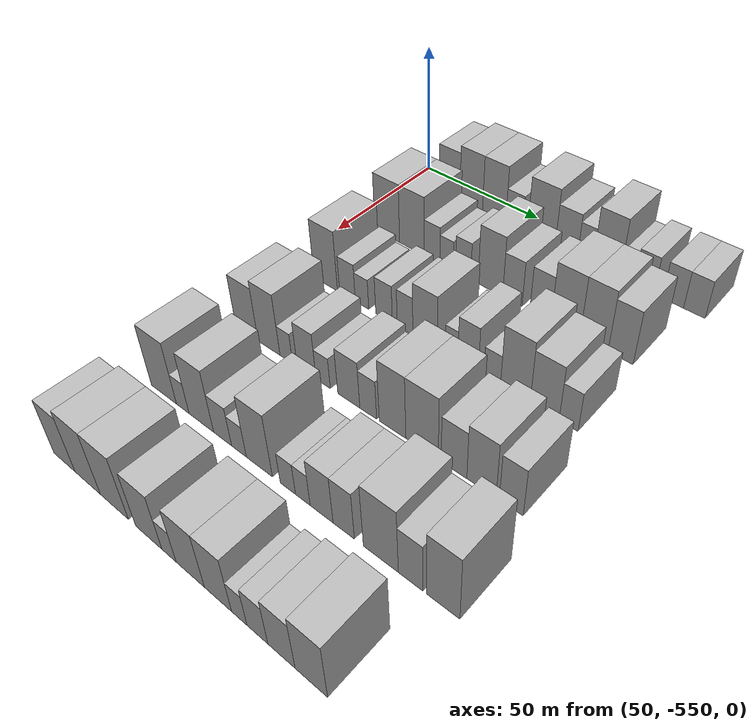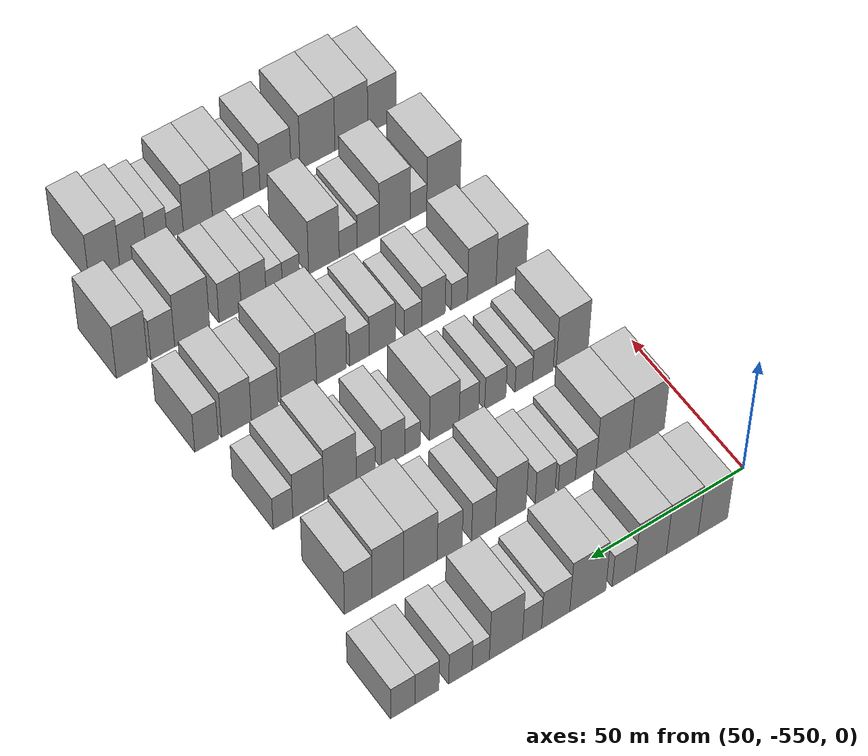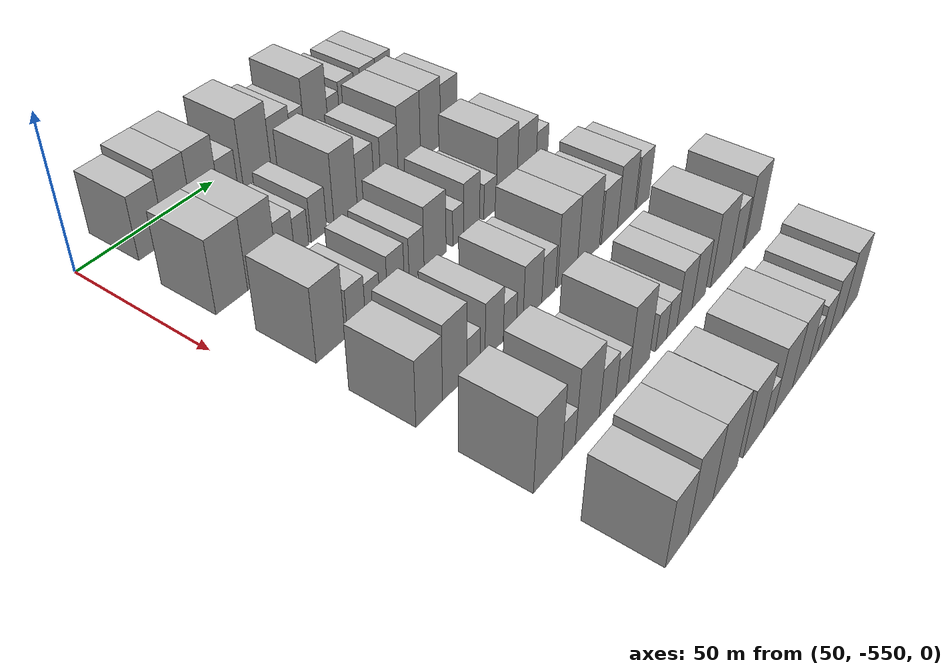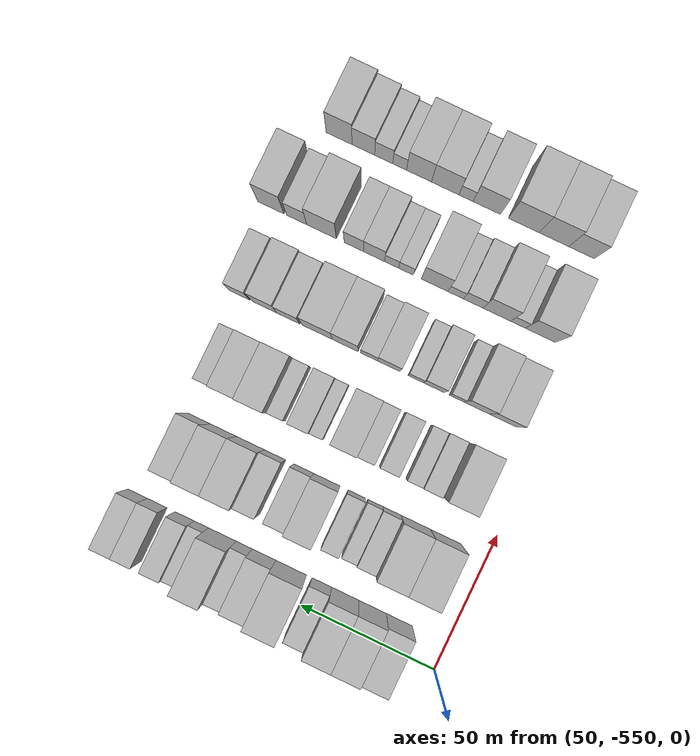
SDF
<sdf version="1.6">
 <world name="default">
  <model name="building_1">
   <static>1</static>
   <pose>50.0000 -532.1588 0 0.000000 0.000000 0.000000</pose>
   <link name="link">
    <pose>0 0 10.50 0 0 0</pose>
    <collision name="collision"><geometry><box><size>20.0000 9.6824 21.0000</size></box></geometry></collision>
    <visual name="visual">
     <cast_shadows>0</cast_shadows>
     <geometry><box><size>20.0000 9.6824 21.0000</size></box></geometry>
     <material>
      <script>
       <uri>model://HANNAS_wall/materials/scripts</uri>
       <uri>model://HANNAS_wall/materials/textures</uri>
       <name>vrc/HANNAS_wall</name>
      </script>
     </material>
    </visual>
   </link>
  </model>
  <model name="building_2">
   <static>1</static>
   <pose>50.0000 -522.1482 0 0.000000 0.000000 0.000000</pose>
   <link name="link">
    <pose>0 0 12.00 0 0 0</pose>
    <collision name="collision"><geometry><box><size>20.0000 10.3388 24.0000</size></box></geometry></collision>
    <visual name="visual">
     <cast_shadows>0</cast_shadows>
     <geometry><box><size>20.0000 10.3388 24.0000</size></box></geometry>
     <material>
      <script>
       <uri>model://HANNAS_wall/materials/scripts</uri>
       <uri>model://HANNAS_wall/materials/textures</uri>
       <name>vrc/HANNAS_wall</name>
      </script>
     </material>
    </visual>
   </link>
  </model>
  <model name="building_3">
   <static>1</static>
   <pose>50.0000 -511.8567 0 0.000000 0.000000 0.000000</pose>
   <link name="link">
    <pose>0 0 12.00 0 0 0</pose>
    <collision name="collision"><geometry><box><size>20.0000 10.2440 24.0000</size></box></geometry></collision>
    <visual name="visual">
     <cast_shadows>0</cast_shadows>
     <geometry><box><size>20.0000 10.2440 24.0000</size></box></geometry>
     <material>
      <script>
       <uri>model://HANNAS_wall/materials/scripts</uri>
       <uri>model://HANNAS_wall/materials/textures</uri>
       <name>vrc/HANNAS_wall</name>
      </script>
     </material>
    </visual>
   </link>
  </model>
  <model name="building_4">
   <static>1</static>
   <pose>50.0000 -503.0630 0 0.000000 0.000000 0.000000</pose>
   <link name="link">
    <pose>0 0 7.50 0 0 0</pose>
    <collision name="collision"><geometry><box><size>20.0000 7.3435 15.0000</size></box></geometry></collision>
    <visual name="visual">
     <cast_shadows>0</cast_shadows>
     <geometry><box><size>20.0000 7.3435 15.0000</size></box></geometry>
     <material>
      <script>
       <uri>model://HANNAS_wall/materials/scripts</uri>
       <uri>model://HANNAS_wall/materials/textures</uri>
       <name>vrc/HANNAS_wall</name>
      </script>
     </material>
    </visual>
   </link>
  </model>
  <model name="building_5">
   <static>1</static>
   <pose>50.0000 -491.6230 0 0.000000 0.000000 0.000000</pose>
   <link name="link">
    <pose>0 0 12.00 0 0 0</pose>
    <collision name="collision"><geometry><box><size>20.0000 11.5364 24.0000</size></box></geometry></collision>
    <visual name="visual">
     <cast_shadows>0</cast_shadows>
     <geometry><box><size>20.0000 11.5364 24.0000</size></box></geometry>
     <material>
      <script>
       <uri>model://HANNAS_wall/materials/scripts</uri>
       <uri>model://HANNAS_wall/materials/textures</uri>
       <name>vrc/HANNAS_wall</name>
      </script>
     </material>
    </visual>
   </link>
  </model>
  <model name="building_6">
   <static>1</static>
   <pose>50.0000 -481.3753 0 0.000000 0.000000 0.000000</pose>
   <link name="link">
    <pose>0 0 9.00 0 0 0</pose>
    <collision name="collision"><geometry><box><size>20.0000 8.9590 18.0000</size></box></geometry></collision>
    <visual name="visual">
     <cast_shadows>0</cast_shadows>
     <geometry><box><size>20.0000 8.9590 18.0000</size></box></geometry>
     <material>
      <script>
       <uri>model://HANNAS_wall/materials/scripts</uri>
       <uri>model://HANNAS_wall/materials/textures</uri>
       <name>vrc/HANNAS_wall</name>
      </script>
     </material>
    </visual>
   </link>
  </model>
  <model name="building_7">
   <static>1</static>
   <pose>50.0000 -473.8902 0 0.000000 0.000000 0.000000</pose>
   <link name="link">
    <pose>0 0 7.50 0 0 0</pose>
    <collision name="collision"><geometry><box><size>20.0000 6.0112 15.0000</size></box></geometry></collision>
    <visual name="visual">
     <cast_shadows>0</cast_shadows>
     <geometry><box><size>20.0000 6.0112 15.0000</size></box></geometry>
     <material>
      <script>
       <uri>model://HANNAS_wall/materials/scripts</uri>
       <uri>model://HANNAS_wall/materials/textures</uri>
       <name>vrc/HANNAS_wall</name>
      </script>
     </material>
    </visual>
   </link>
  </model>
  <model name="building_8">
   <static>1</static>
   <pose>50.0000 -465.6732 0 0.000000 0.000000 0.000000</pose>
   <link name="link">
    <pose>0 0 12.00 0 0 0</pose>
    <collision name="collision"><geometry><box><size>20.0000 10.4227 24.0000</size></box></geometry></collision>
    <visual name="visual">
     <cast_shadows>0</cast_shadows>
     <geometry><box><size>20.0000 10.4227 24.0000</size></box></geometry>
     <material>
      <script>
       <uri>model://HANNAS_wall/materials/scripts</uri>
       <uri>model://HANNAS_wall/materials/textures</uri>
       <name>vrc/HANNAS_wall</name>
      </script>
     </material>
    </visual>
   </link>
  </model>
  <model name="building_9">
   <static>1</static>
   <pose>50.0000 -457.7671 0 0.000000 0.000000 0.000000</pose>
   <link name="link">
    <pose>0 0 6.00 0 0 0</pose>
    <collision name="collision"><geometry><box><size>20.0000 5.3895 12.0000</size></box></geometry></collision>
    <visual name="visual">
     <cast_shadows>0</cast_shadows>
     <geometry><box><size>20.0000 5.3895 12.0000</size></box></geometry>
     <material>
      <script>
       <uri>model://HANNAS_wall/materials/scripts</uri>
       <uri>model://HANNAS_wall/materials/textures</uri>
       <name>vrc/HANNAS_wall</name>
      </script>
     </material>
    </visual>
   </link>
  </model>
  <model name="building_10">
   <static>1</static>
   <pose>50.0000 -451.4351 0 0.000000 0.000000 0.000000</pose>
   <link name="link">
    <pose>0 0 7.50 0 0 0</pose>
    <collision name="collision"><geometry><box><size>20.0000 7.2745 15.0000</size></box></geometry></collision>
    <visual name="visual">
     <cast_shadows>0</cast_shadows>
     <geometry><box><size>20.0000 7.2745 15.0000</size></box></geometry>
     <material>
      <script>
       <uri>model://HANNAS_wall/materials/scripts</uri>
       <uri>model://HANNAS_wall/materials/textures</uri>
       <name>vrc/HANNAS_wall</name>
      </script>
     </material>
    </visual>
   </link>
  </model>
  <model name="building_11">
   <static>1</static>
   <pose>50.0000 -441.0930 0 0.000000 0.000000 0.000000</pose>
   <link name="link">
    <pose>0 0 7.50 0 0 0</pose>
    <collision name="collision"><geometry><box><size>20.0000 7.4098 15.0000</size></box></geometry></collision>
    <visual name="visual">
     <cast_shadows>0</cast_shadows>
     <geometry><box><size>20.0000 7.4098 15.0000</size></box></geometry>
     <material>
      <script>
       <uri>model://HANNAS_wall/materials/scripts</uri>
       <uri>model://HANNAS_wall/materials/textures</uri>
       <name>vrc/HANNAS_wall</name>
      </script>
     </material>
    </visual>
   </link>
  </model>
  <model name="building_12">
   <static>1</static>
   <pose>50.0000 -433.6533 0 0.000000 0.000000 0.000000</pose>
   <link name="link">
    <pose>0 0 7.50 0 0 0</pose>
    <collision name="collision"><geometry><box><size>20.0000 7.4696 15.0000</size></box></geometry></collision>
    <visual name="visual">
     <cast_shadows>0</cast_shadows>
     <geometry><box><size>20.0000 7.4696 15.0000</size></box></geometry>
     <material>
      <script>
       <uri>model://HANNAS_wall/materials/scripts</uri>
       <uri>model://HANNAS_wall/materials/textures</uri>
       <name>vrc/HANNAS_wall</name>
      </script>
     </material>
    </visual>
   </link>
  </model>
  <model name="building_111">
   <static>1</static>
   <pose>82.0000 -534.2903 0 0.000000 0.000000 0.000000</pose>
   <link name="link">
    <pose>0 0 12.00 0 0 0</pose>
    <collision name="collision"><geometry><box><size>20.0000 11.4194 24.0000</size></box></geometry></collision>
    <visual name="visual">
     <cast_shadows>0</cast_shadows>
     <geometry><box><size>20.0000 11.4194 24.0000</size></box></geometry>
     <material>
      <script>
       <uri>model://HANNAS_wall/materials/scripts</uri>
       <uri>model://HANNAS_wall/materials/textures</uri>
       <name>vrc/HANNAS_wall</name>
      </script>
     </material>
    </visual>
   </link>
  </model>
  <model name="building_112">
   <static>1</static>
   <pose>82.0000 -523.0657 0 0.000000 0.000000 0.000000</pose>
   <link name="link">
    <pose>0 0 12.00 0 0 0</pose>
    <collision name="collision"><geometry><box><size>20.0000 11.0299 24.0000</size></box></geometry></collision>
    <visual name="visual">
     <cast_shadows>0</cast_shadows>
     <geometry><box><size>20.0000 11.0299 24.0000</size></box></geometry>
     <material>
      <script>
       <uri>model://HANNAS_wall/materials/scripts</uri>
       <uri>model://HANNAS_wall/materials/textures</uri>
       <name>vrc/HANNAS_wall</name>
      </script>
     </material>
    </visual>
   </link>
  </model>
  <model name="building_113">
   <static>1</static>
   <pose>82.0000 -514.1057 0 0.000000 0.000000 0.000000</pose>
   <link name="link">
    <pose>0 0 7.50 0 0 0</pose>
    <collision name="collision"><geometry><box><size>20.0000 6.8899 15.0000</size></box></geometry></collision>
    <visual name="visual">
     <cast_shadows>0</cast_shadows>
     <geometry><box><size>20.0000 6.8899 15.0000</size></box></geometry>
     <material>
      <script>
       <uri>model://HANNAS_wall/materials/scripts</uri>
       <uri>model://HANNAS_wall/materials/textures</uri>
       <name>vrc/HANNAS_wall</name>
      </script>
     </material>
    </visual>
   </link>
  </model>
  <model name="building_114">
   <static>1</static>
   <pose>82.0000 -507.8627 0 0.000000 0.000000 0.000000</pose>
   <link name="link">
    <pose>0 0 6.00 0 0 0</pose>
    <collision name="collision"><geometry><box><size>20.0000 5.5962 12.0000</size></box></geometry></collision>
    <visual name="visual">
     <cast_shadows>0</cast_shadows>
     <geometry><box><size>20.0000 5.5962 12.0000</size></box></geometry>
     <material>
      <script>
       <uri>model://HANNAS_wall/materials/scripts</uri>
       <uri>model://HANNAS_wall/materials/textures</uri>
       <name>vrc/HANNAS_wall</name>
      </script>
     </material>
    </visual>
   </link>
  </model>
  <model name="building_115">
   <static>1</static>
   <pose>82.0000 -500.8455 0 0.000000 0.000000 0.000000</pose>
   <link name="link">
    <pose>0 0 7.50 0 0 0</pose>
    <collision name="collision"><geometry><box><size>20.0000 6.4382 15.0000</size></box></geometry></collision>
    <visual name="visual">
     <cast_shadows>0</cast_shadows>
     <geometry><box><size>20.0000 6.4382 15.0000</size></box></geometry>
     <material>
      <script>
       <uri>model://HANNAS_wall/materials/scripts</uri>
       <uri>model://HANNAS_wall/materials/textures</uri>
       <name>vrc/HANNAS_wall</name>
      </script>
     </material>
    </visual>
   </link>
  </model>
  <model name="building_116">
   <static>1</static>
   <pose>82.0000 -489.6792 0 0.000000 0.000000 0.000000</pose>
   <link name="link">
    <pose>0 0 12.00 0 0 0</pose>
    <collision name="collision"><geometry><box><size>20.0000 9.8943 24.0000</size></box></geometry></collision>
    <visual name="visual">
     <cast_shadows>0</cast_shadows>
     <geometry><box><size>20.0000 9.8943 24.0000</size></box></geometry>
     <material>
      <script>
       <uri>model://HANNAS_wall/materials/scripts</uri>
       <uri>model://HANNAS_wall/materials/textures</uri>
       <name>vrc/HANNAS_wall</name>
      </script>
     </material>
    </visual>
   </link>
  </model>
  <model name="building_117">
   <static>1</static>
   <pose>82.0000 -480.9414 0 0.000000 0.000000 0.000000</pose>
   <link name="link">
    <pose>0 0 9.00 0 0 0</pose>
    <collision name="collision"><geometry><box><size>20.0000 7.5812 18.0000</size></box></geometry></collision>
    <visual name="visual">
     <cast_shadows>0</cast_shadows>
     <geometry><box><size>20.0000 7.5812 18.0000</size></box></geometry>
     <material>
      <script>
       <uri>model://HANNAS_wall/materials/scripts</uri>
       <uri>model://HANNAS_wall/materials/textures</uri>
       <name>vrc/HANNAS_wall</name>
      </script>
     </material>
    </visual>
   </link>
  </model>
  <model name="building_118">
   <static>1</static>
   <pose>82.0000 -470.1765 0 0.000000 0.000000 0.000000</pose>
   <link name="link">
    <pose>0 0 9.00 0 0 0</pose>
    <collision name="collision"><geometry><box><size>20.0000 7.9486 18.0000</size></box></geometry></collision>
    <visual name="visual">
     <cast_shadows>0</cast_shadows>
     <geometry><box><size>20.0000 7.9486 18.0000</size></box></geometry>
     <material>
      <script>
       <uri>model://HANNAS_wall/materials/scripts</uri>
       <uri>model://HANNAS_wall/materials/textures</uri>
       <name>vrc/HANNAS_wall</name>
      </script>
     </material>
    </visual>
   </link>
  </model>
  <model name="building_119">
   <static>1</static>
   <pose>82.0000 -460.9005 0 0.000000 0.000000 0.000000</pose>
   <link name="link">
    <pose>0 0 12.00 0 0 0</pose>
    <collision name="collision"><geometry><box><size>20.0000 10.6034 24.0000</size></box></geometry></collision>
    <visual name="visual">
     <cast_shadows>0</cast_shadows>
     <geometry><box><size>20.0000 10.6034 24.0000</size></box></geometry>
     <material>
      <script>
       <uri>model://HANNAS_wall/materials/scripts</uri>
       <uri>model://HANNAS_wall/materials/textures</uri>
       <name>vrc/HANNAS_wall</name>
      </script>
     </material>
    </visual>
   </link>
  </model>
  <model name="building_120">
   <static>1</static>
   <pose>82.0000 -450.6607 0 0.000000 0.000000 0.000000</pose>
   <link name="link">
    <pose>0 0 12.00 0 0 0</pose>
    <collision name="collision"><geometry><box><size>20.0000 9.8763 24.0000</size></box></geometry></collision>
    <visual name="visual">
     <cast_shadows>0</cast_shadows>
     <geometry><box><size>20.0000 9.8763 24.0000</size></box></geometry>
     <material>
      <script>
       <uri>model://HANNAS_wall/materials/scripts</uri>
       <uri>model://HANNAS_wall/materials/textures</uri>
       <name>vrc/HANNAS_wall</name>
      </script>
     </material>
    </visual>
   </link>
  </model>
  <model name="building_121">
   <static>1</static>
   <pose>82.0000 -441.4462 0 0.000000 0.000000 0.000000</pose>
   <link name="link">
    <pose>0 0 10.50 0 0 0</pose>
    <collision name="collision"><geometry><box><size>20.0000 8.5529 21.0000</size></box></geometry></collision>
    <visual name="visual">
     <cast_shadows>0</cast_shadows>
     <geometry><box><size>20.0000 8.5529 21.0000</size></box></geometry>
     <material>
      <script>
       <uri>model://HANNAS_wall/materials/scripts</uri>
       <uri>model://HANNAS_wall/materials/textures</uri>
       <name>vrc/HANNAS_wall</name>
      </script>
     </material>
    </visual>
   </link>
  </model>
  <model name="building_228">
   <static>1</static>
   <pose>114.0000 -532.6714 0 0.000000 0.000000 0.000000</pose>
   <link name="link">
    <pose>0 0 12.00 0 0 0</pose>
    <collision name="collision"><geometry><box><size>20.0000 10.6571 24.0000</size></box></geometry></collision>
    <visual name="visual">
     <cast_shadows>0</cast_shadows>
     <geometry><box><size>20.0000 10.6571 24.0000</size></box></geometry>
     <material>
      <script>
       <uri>model://HANNAS_wall/materials/scripts</uri>
       <uri>model://HANNAS_wall/materials/textures</uri>
       <name>vrc/HANNAS_wall</name>
      </script>
     </material>
    </visual>
   </link>
  </model>
  <model name="building_229">
   <static>1</static>
   <pose>114.0000 -522.8962 0 0.000000 0.000000 0.000000</pose>
   <link name="link">
    <pose>0 0 7.50 0 0 0</pose>
    <collision name="collision"><geometry><box><size>20.0000 6.8933 15.0000</size></box></geometry></collision>
    <visual name="visual">
     <cast_shadows>0</cast_shadows>
     <geometry><box><size>20.0000 6.8933 15.0000</size></box></geometry>
     <material>
      <script>
       <uri>model://HANNAS_wall/materials/scripts</uri>
       <uri>model://HANNAS_wall/materials/textures</uri>
       <name>vrc/HANNAS_wall</name>
      </script>
     </material>
    </visual>
   </link>
  </model>
  <model name="building_230">
   <static>1</static>
   <pose>114.0000 -516.5632 0 0.000000 0.000000 0.000000</pose>
   <link name="link">
    <pose>0 0 6.00 0 0 0</pose>
    <collision name="collision"><geometry><box><size>20.0000 5.7729 12.0000</size></box></geometry></collision>
    <visual name="visual">
     <cast_shadows>0</cast_shadows>
     <geometry><box><size>20.0000 5.7729 12.0000</size></box></geometry>
     <material>
      <script>
       <uri>model://HANNAS_wall/materials/scripts</uri>
       <uri>model://HANNAS_wall/materials/textures</uri>
       <name>vrc/HANNAS_wall</name>
      </script>
     </material>
    </visual>
   </link>
  </model>
  <model name="building_231">
   <static>1</static>
   <pose>114.0000 -507.1997 0 0.000000 0.000000 0.000000</pose>
   <link name="link">
    <pose>0 0 7.50 0 0 0</pose>
    <collision name="collision"><geometry><box><size>20.0000 6.9540 15.0000</size></box></geometry></collision>
    <visual name="visual">
     <cast_shadows>0</cast_shadows>
     <geometry><box><size>20.0000 6.9540 15.0000</size></box></geometry>
     <material>
      <script>
       <uri>model://HANNAS_wall/materials/scripts</uri>
       <uri>model://HANNAS_wall/materials/textures</uri>
       <name>vrc/HANNAS_wall</name>
      </script>
     </material>
    </visual>
   </link>
  </model>
  <model name="building_232">
   <static>1</static>
   <pose>114.0000 -498.5514 0 0.000000 0.000000 0.000000</pose>
   <link name="link">
    <pose>0 0 7.50 0 0 0</pose>
    <collision name="collision"><geometry><box><size>20.0000 6.3427 15.0000</size></box></geometry></collision>
    <visual name="visual">
     <cast_shadows>0</cast_shadows>
     <geometry><box><size>20.0000 6.3427 15.0000</size></box></geometry>
     <material>
      <script>
       <uri>model://HANNAS_wall/materials/scripts</uri>
       <uri>model://HANNAS_wall/materials/textures</uri>
       <name>vrc/HANNAS_wall</name>
      </script>
     </material>
    </visual>
   </link>
  </model>
  <model name="building_233">
   <static>1</static>
   <pose>114.0000 -490.5508 0 0.000000 0.000000 0.000000</pose>
   <link name="link">
    <pose>0 0 10.50 0 0 0</pose>
    <collision name="collision"><geometry><box><size>20.0000 9.6585 21.0000</size></box></geometry></collision>
    <visual name="visual">
     <cast_shadows>0</cast_shadows>
     <geometry><box><size>20.0000 9.6585 21.0000</size></box></geometry>
     <material>
      <script>
       <uri>model://HANNAS_wall/materials/scripts</uri>
       <uri>model://HANNAS_wall/materials/textures</uri>
       <name>vrc/HANNAS_wall</name>
      </script>
     </material>
    </visual>
   </link>
  </model>
  <model name="building_234">
   <static>1</static>
   <pose>114.0000 -480.2836 0 0.000000 0.000000 0.000000</pose>
   <link name="link">
    <pose>0 0 6.00 0 0 0</pose>
    <collision name="collision"><geometry><box><size>20.0000 4.8757 12.0000</size></box></geometry></collision>
    <visual name="visual">
     <cast_shadows>0</cast_shadows>
     <geometry><box><size>20.0000 4.8757 12.0000</size></box></geometry>
     <material>
      <script>
       <uri>model://HANNAS_wall/materials/scripts</uri>
       <uri>model://HANNAS_wall/materials/textures</uri>
       <name>vrc/HANNAS_wall</name>
      </script>
     </material>
    </visual>
   </link>
  </model>
  <model name="building_235">
   <static>1</static>
   <pose>114.0000 -474.0440 0 0.000000 0.000000 0.000000</pose>
   <link name="link">
    <pose>0 0 9.00 0 0 0</pose>
    <collision name="collision"><geometry><box><size>20.0000 7.6035 18.0000</size></box></geometry></collision>
    <visual name="visual">
     <cast_shadows>0</cast_shadows>
     <geometry><box><size>20.0000 7.6035 18.0000</size></box></geometry>
     <material>
      <script>
       <uri>model://HANNAS_wall/materials/scripts</uri>
       <uri>model://HANNAS_wall/materials/textures</uri>
       <name>vrc/HANNAS_wall</name>
      </script>
     </material>
    </visual>
   </link>
  </model>
  <model name="building_236">
   <static>1</static>
   <pose>114.0000 -465.2489 0 0.000000 0.000000 0.000000</pose>
   <link name="link">
    <pose>0 0 6.00 0 0 0</pose>
    <collision name="collision"><geometry><box><size>20.0000 5.9868 12.0000</size></box></geometry></collision>
    <visual name="visual">
     <cast_shadows>0</cast_shadows>
     <geometry><box><size>20.0000 5.9868 12.0000</size></box></geometry>
     <material>
      <script>
       <uri>model://HANNAS_wall/materials/scripts</uri>
       <uri>model://HANNAS_wall/materials/textures</uri>
       <name>vrc/HANNAS_wall</name>
      </script>
     </material>
    </visual>
   </link>
  </model>
  <model name="building_237">
   <static>1</static>
   <pose>114.0000 -457.0918 0 0.000000 0.000000 0.000000</pose>
   <link name="link">
    <pose>0 0 12.00 0 0 0</pose>
    <collision name="collision"><geometry><box><size>20.0000 10.3275 24.0000</size></box></geometry></collision>
    <visual name="visual">
     <cast_shadows>0</cast_shadows>
     <geometry><box><size>20.0000 10.3275 24.0000</size></box></geometry>
     <material>
      <script>
       <uri>model://HANNAS_wall/materials/scripts</uri>
       <uri>model://HANNAS_wall/materials/textures</uri>
       <name>vrc/HANNAS_wall</name>
      </script>
     </material>
    </visual>
   </link>
  </model>
  <model name="building_238">
   <static>1</static>
   <pose>114.0000 -447.0476 0 0.000000 0.000000 0.000000</pose>
   <link name="link">
    <pose>0 0 10.50 0 0 0</pose>
    <collision name="collision"><geometry><box><size>20.0000 9.7608 21.0000</size></box></geometry></collision>
    <visual name="visual">
     <cast_shadows>0</cast_shadows>
     <geometry><box><size>20.0000 9.7608 21.0000</size></box></geometry>
     <material>
      <script>
       <uri>model://HANNAS_wall/materials/scripts</uri>
       <uri>model://HANNAS_wall/materials/textures</uri>
       <name>vrc/HANNAS_wall</name>
      </script>
     </material>
    </visual>
   </link>
  </model>
  <model name="building_239">
   <static>1</static>
   <pose>114.0000 -439.0636 0 0.000000 0.000000 0.000000</pose>
   <link name="link">
    <pose>0 0 7.50 0 0 0</pose>
    <collision name="collision"><geometry><box><size>20.0000 6.2073 15.0000</size></box></geometry></collision>
    <visual name="visual">
     <cast_shadows>0</cast_shadows>
     <geometry><box><size>20.0000 6.2073 15.0000</size></box></geometry>
     <material>
      <script>
       <uri>model://HANNAS_wall/materials/scripts</uri>
       <uri>model://HANNAS_wall/materials/textures</uri>
       <name>vrc/HANNAS_wall</name>
      </script>
     </material>
    </visual>
   </link>
  </model>
  <model name="building_350">
   <static>1</static>
   <pose>146.0000 -534.9698 0 0.000000 0.000000 0.000000</pose>
   <link name="link">
    <pose>0 0 10.50 0 0 0</pose>
    <collision name="collision"><geometry><box><size>20.0000 10.0604 21.0000</size></box></geometry></collision>
    <visual name="visual">
     <cast_shadows>0</cast_shadows>
     <geometry><box><size>20.0000 10.0604 21.0000</size></box></geometry>
     <material>
      <script>
       <uri>model://HANNAS_wall/materials/scripts</uri>
       <uri>model://HANNAS_wall/materials/textures</uri>
       <name>vrc/HANNAS_wall</name>
      </script>
     </material>
    </visual>
   </link>
  </model>
  <model name="building_351">
   <static>1</static>
   <pose>146.0000 -525.0941 0 0.000000 0.000000 0.000000</pose>
   <link name="link">
    <pose>0 0 12.00 0 0 0</pose>
    <collision name="collision"><geometry><box><size>20.0000 9.6910 24.0000</size></box></geometry></collision>
    <visual name="visual">
     <cast_shadows>0</cast_shadows>
     <geometry><box><size>20.0000 9.6910 24.0000</size></box></geometry>
     <material>
      <script>
       <uri>model://HANNAS_wall/materials/scripts</uri>
       <uri>model://HANNAS_wall/materials/textures</uri>
       <name>vrc/HANNAS_wall</name>
      </script>
     </material>
    </visual>
   </link>
  </model>
  <model name="building_352">
   <static>1</static>
   <pose>146.0000 -517.5596 0 0.000000 0.000000 0.000000</pose>
   <link name="link">
    <pose>0 0 6.00 0 0 0</pose>
    <collision name="collision"><geometry><box><size>20.0000 5.3779 12.0000</size></box></geometry></collision>
    <visual name="visual">
     <cast_shadows>0</cast_shadows>
     <geometry><box><size>20.0000 5.3779 12.0000</size></box></geometry>
     <material>
      <script>
       <uri>model://HANNAS_wall/materials/scripts</uri>
       <uri>model://HANNAS_wall/materials/textures</uri>
       <name>vrc/HANNAS_wall</name>
      </script>
     </material>
    </visual>
   </link>
  </model>
  <model name="building_353">
   <static>1</static>
   <pose>146.0000 -508.9685 0 0.000000 0.000000 0.000000</pose>
   <link name="link">
    <pose>0 0 9.00 0 0 0</pose>
    <collision name="collision"><geometry><box><size>20.0000 7.8044 18.0000</size></box></geometry></collision>
    <visual name="visual">
     <cast_shadows>0</cast_shadows>
     <geometry><box><size>20.0000 7.8044 18.0000</size></box></geometry>
     <material>
      <script>
       <uri>model://HANNAS_wall/materials/scripts</uri>
       <uri>model://HANNAS_wall/materials/textures</uri>
       <name>vrc/HANNAS_wall</name>
      </script>
     </material>
    </visual>
   </link>
  </model>
  <model name="building_354">
   <static>1</static>
   <pose>146.0000 -502.2011 0 0.000000 0.000000 0.000000</pose>
   <link name="link">
    <pose>0 0 6.00 0 0 0</pose>
    <collision name="collision"><geometry><box><size>20.0000 5.7302 12.0000</size></box></geometry></collision>
    <visual name="visual">
     <cast_shadows>0</cast_shadows>
     <geometry><box><size>20.0000 5.7302 12.0000</size></box></geometry>
     <material>
      <script>
       <uri>model://HANNAS_wall/materials/scripts</uri>
       <uri>model://HANNAS_wall/materials/textures</uri>
       <name>vrc/HANNAS_wall</name>
      </script>
     </material>
    </visual>
   </link>
  </model>
  <model name="building_355">
   <static>1</static>
   <pose>146.0000 -492.0573 0 0.000000 0.000000 0.000000</pose>
   <link name="link">
    <pose>0 0 9.00 0 0 0</pose>
    <collision name="collision"><geometry><box><size>20.0000 8.5575 18.0000</size></box></geometry></collision>
    <visual name="visual">
     <cast_shadows>0</cast_shadows>
     <geometry><box><size>20.0000 8.5575 18.0000</size></box></geometry>
     <material>
      <script>
       <uri>model://HANNAS_wall/materials/scripts</uri>
       <uri>model://HANNAS_wall/materials/textures</uri>
       <name>vrc/HANNAS_wall</name>
      </script>
     </material>
    </visual>
   </link>
  </model>
  <model name="building_356">
   <static>1</static>
   <pose>146.0000 -484.5891 0 0.000000 0.000000 0.000000</pose>
   <link name="link">
    <pose>0 0 7.50 0 0 0</pose>
    <collision name="collision"><geometry><box><size>20.0000 6.3788 15.0000</size></box></geometry></collision>
    <visual name="visual">
     <cast_shadows>0</cast_shadows>
     <geometry><box><size>20.0000 6.3788 15.0000</size></box></geometry>
     <material>
      <script>
       <uri>model://HANNAS_wall/materials/scripts</uri>
       <uri>model://HANNAS_wall/materials/textures</uri>
       <name>vrc/HANNAS_wall</name>
      </script>
     </material>
    </visual>
   </link>
  </model>
  <model name="building_357">
   <static>1</static>
   <pose>146.0000 -475.5554 0 0.000000 0.000000 0.000000</pose>
   <link name="link">
    <pose>0 0 12.00 0 0 0</pose>
    <collision name="collision"><geometry><box><size>20.0000 9.6885 24.0000</size></box></geometry></collision>
    <visual name="visual">
     <cast_shadows>0</cast_shadows>
     <geometry><box><size>20.0000 9.6885 24.0000</size></box></geometry>
     <material>
      <script>
       <uri>model://HANNAS_wall/materials/scripts</uri>
       <uri>model://HANNAS_wall/materials/textures</uri>
       <name>vrc/HANNAS_wall</name>
      </script>
     </material>
    </visual>
   </link>
  </model>
  <model name="building_358">
   <static>1</static>
   <pose>146.0000 -465.0235 0 0.000000 0.000000 0.000000</pose>
   <link name="link">
    <pose>0 0 12.00 0 0 0</pose>
    <collision name="collision"><geometry><box><size>20.0000 11.3752 24.0000</size></box></geometry></collision>
    <visual name="visual">
     <cast_shadows>0</cast_shadows>
     <geometry><box><size>20.0000 11.3752 24.0000</size></box></geometry>
     <material>
      <script>
       <uri>model://HANNAS_wall/materials/scripts</uri>
       <uri>model://HANNAS_wall/materials/textures</uri>
       <name>vrc/HANNAS_wall</name>
      </script>
     </material>
    </visual>
   </link>
  </model>
  <model name="building_359">
   <static>1</static>
   <pose>146.0000 -454.0398 0 0.000000 0.000000 0.000000</pose>
   <link name="link">
    <pose>0 0 9.00 0 0 0</pose>
    <collision name="collision"><geometry><box><size>20.0000 8.5922 18.0000</size></box></geometry></collision>
    <visual name="visual">
     <cast_shadows>0</cast_shadows>
     <geometry><box><size>20.0000 8.5922 18.0000</size></box></geometry>
     <material>
      <script>
       <uri>model://HANNAS_wall/materials/scripts</uri>
       <uri>model://HANNAS_wall/materials/textures</uri>
       <name>vrc/HANNAS_wall</name>
      </script>
     </material>
    </visual>
   </link>
  </model>
  <model name="building_360">
   <static>1</static>
   <pose>146.0000 -445.0152 0 0.000000 0.000000 0.000000</pose>
   <link name="link">
    <pose>0 0 10.50 0 0 0</pose>
    <collision name="collision"><geometry><box><size>20.0000 9.4572 21.0000</size></box></geometry></collision>
    <visual name="visual">
     <cast_shadows>0</cast_shadows>
     <geometry><box><size>20.0000 9.4572 21.0000</size></box></geometry>
     <material>
      <script>
       <uri>model://HANNAS_wall/materials/scripts</uri>
       <uri>model://HANNAS_wall/materials/textures</uri>
       <name>vrc/HANNAS_wall</name>
      </script>
     </material>
    </visual>
   </link>
  </model>
  <model name="building_361">
   <static>1</static>
   <pose>146.0000 -435.5506 0 0.000000 0.000000 0.000000</pose>
   <link name="link">
    <pose>0 0 9.00 0 0 0</pose>
    <collision name="collision"><geometry><box><size>20.0000 7.4719 18.0000</size></box></geometry></collision>
    <visual name="visual">
     <cast_shadows>0</cast_shadows>
     <geometry><box><size>20.0000 7.4719 18.0000</size></box></geometry>
     <material>
      <script>
       <uri>model://HANNAS_wall/materials/scripts</uri>
       <uri>model://HANNAS_wall/materials/textures</uri>
       <name>vrc/HANNAS_wall</name>
      </script>
     </material>
    </visual>
   </link>
  </model>
  <model name="building_466">
   <static>1</static>
   <pose>178.0000 -534.3207 0 0.000000 0.000000 0.000000</pose>
   <link name="link">
    <pose>0 0 12.00 0 0 0</pose>
    <collision name="collision"><geometry><box><size>20.0000 11.3586 24.0000</size></box></geometry></collision>
    <visual name="visual">
     <cast_shadows>0</cast_shadows>
     <geometry><box><size>20.0000 11.3586 24.0000</size></box></geometry>
     <material>
      <script>
       <uri>model://HANNAS_wall/materials/scripts</uri>
       <uri>model://HANNAS_wall/materials/textures</uri>
       <name>vrc/HANNAS_wall</name>
      </script>
     </material>
    </visual>
   </link>
  </model>
  <model name="building_467">
   <static>1</static>
   <pose>178.0000 -525.8727 0 0.000000 0.000000 0.000000</pose>
   <link name="link">
    <pose>0 0 6.00 0 0 0</pose>
    <collision name="collision"><geometry><box><size>20.0000 5.5376 12.0000</size></box></geometry></collision>
    <visual name="visual">
     <cast_shadows>0</cast_shadows>
     <geometry><box><size>20.0000 5.5376 12.0000</size></box></geometry>
     <material>
      <script>
       <uri>model://HANNAS_wall/materials/scripts</uri>
       <uri>model://HANNAS_wall/materials/textures</uri>
       <name>vrc/HANNAS_wall</name>
      </script>
     </material>
    </visual>
   </link>
  </model>
  <model name="building_468">
   <static>1</static>
   <pose>178.0000 -517.8568 0 0.000000 0.000000 0.000000</pose>
   <link name="link">
    <pose>0 0 12.00 0 0 0</pose>
    <collision name="collision"><geometry><box><size>20.0000 10.4942 24.0000</size></box></geometry></collision>
    <visual name="visual">
     <cast_shadows>0</cast_shadows>
     <geometry><box><size>20.0000 10.4942 24.0000</size></box></geometry>
     <material>
      <script>
       <uri>model://HANNAS_wall/materials/scripts</uri>
       <uri>model://HANNAS_wall/materials/textures</uri>
       <name>vrc/HANNAS_wall</name>
      </script>
     </material>
    </visual>
   </link>
  </model>
  <model name="building_469">
   <static>1</static>
   <pose>178.0000 -508.9145 0 0.000000 0.000000 0.000000</pose>
   <link name="link">
    <pose>0 0 7.50 0 0 0</pose>
    <collision name="collision"><geometry><box><size>20.0000 7.3902 15.0000</size></box></geometry></collision>
    <visual name="visual">
     <cast_shadows>0</cast_shadows>
     <geometry><box><size>20.0000 7.3902 15.0000</size></box></geometry>
     <material>
      <script>
       <uri>model://HANNAS_wall/materials/scripts</uri>
       <uri>model://HANNAS_wall/materials/textures</uri>
       <name>vrc/HANNAS_wall</name>
      </script>
     </material>
    </visual>
   </link>
  </model>
  <model name="building_470">
   <static>1</static>
   <pose>178.0000 -502.2492 0 0.000000 0.000000 0.000000</pose>
   <link name="link">
    <pose>0 0 6.00 0 0 0</pose>
    <collision name="collision"><geometry><box><size>20.0000 5.9404 12.0000</size></box></geometry></collision>
    <visual name="visual">
     <cast_shadows>0</cast_shadows>
     <geometry><box><size>20.0000 5.9404 12.0000</size></box></geometry>
     <material>
      <script>
       <uri>model://HANNAS_wall/materials/scripts</uri>
       <uri>model://HANNAS_wall/materials/textures</uri>
       <name>vrc/HANNAS_wall</name>
      </script>
     </material>
    </visual>
   </link>
  </model>
  <model name="building_471">
   <static>1</static>
   <pose>178.0000 -494.2200 0 0.000000 0.000000 0.000000</pose>
   <link name="link">
    <pose>0 0 12.00 0 0 0</pose>
    <collision name="collision"><geometry><box><size>20.0000 10.1181 24.0000</size></box></geometry></collision>
    <visual name="visual">
     <cast_shadows>0</cast_shadows>
     <geometry><box><size>20.0000 10.1181 24.0000</size></box></geometry>
     <material>
      <script>
       <uri>model://HANNAS_wall/materials/scripts</uri>
       <uri>model://HANNAS_wall/materials/textures</uri>
       <name>vrc/HANNAS_wall</name>
      </script>
     </material>
    </visual>
   </link>
  </model>
  <model name="building_472">
   <static>1</static>
   <pose>178.0000 -483.3355 0 0.000000 0.000000 0.000000</pose>
   <link name="link">
    <pose>0 0 6.00 0 0 0</pose>
    <collision name="collision"><geometry><box><size>20.0000 5.6510 12.0000</size></box></geometry></collision>
    <visual name="visual">
     <cast_shadows>0</cast_shadows>
     <geometry><box><size>20.0000 5.6510 12.0000</size></box></geometry>
     <material>
      <script>
       <uri>model://HANNAS_wall/materials/scripts</uri>
       <uri>model://HANNAS_wall/materials/textures</uri>
       <name>vrc/HANNAS_wall</name>
      </script>
     </material>
    </visual>
   </link>
  </model>
  <model name="building_473">
   <static>1</static>
   <pose>178.0000 -477.8509 0 0.000000 0.000000 0.000000</pose>
   <link name="link">
    <pose>0 0 6.00 0 0 0</pose>
    <collision name="collision"><geometry><box><size>20.0000 5.3182 12.0000</size></box></geometry></collision>
    <visual name="visual">
     <cast_shadows>0</cast_shadows>
     <geometry><box><size>20.0000 5.3182 12.0000</size></box></geometry>
     <material>
      <script>
       <uri>model://HANNAS_wall/materials/scripts</uri>
       <uri>model://HANNAS_wall/materials/textures</uri>
       <name>vrc/HANNAS_wall</name>
      </script>
     </material>
    </visual>
   </link>
  </model>
  <model name="building_474">
   <static>1</static>
   <pose>178.0000 -471.1518 0 0.000000 0.000000 0.000000</pose>
   <link name="link">
    <pose>0 0 9.00 0 0 0</pose>
    <collision name="collision"><geometry><box><size>20.0000 8.0800 18.0000</size></box></geometry></collision>
    <visual name="visual">
     <cast_shadows>0</cast_shadows>
     <geometry><box><size>20.0000 8.0800 18.0000</size></box></geometry>
     <material>
      <script>
       <uri>model://HANNAS_wall/materials/scripts</uri>
       <uri>model://HANNAS_wall/materials/textures</uri>
       <name>vrc/HANNAS_wall</name>
      </script>
     </material>
    </visual>
   </link>
  </model>
  <model name="building_475">
   <static>1</static>
   <pose>178.0000 -463.4761 0 0.000000 0.000000 0.000000</pose>
   <link name="link">
    <pose>0 0 9.00 0 0 0</pose>
    <collision name="collision"><geometry><box><size>20.0000 7.2713 18.0000</size></box></geometry></collision>
    <visual name="visual">
     <cast_shadows>0</cast_shadows>
     <geometry><box><size>20.0000 7.2713 18.0000</size></box></geometry>
     <material>
      <script>
       <uri>model://HANNAS_wall/materials/scripts</uri>
       <uri>model://HANNAS_wall/materials/textures</uri>
       <name>vrc/HANNAS_wall</name>
      </script>
     </material>
    </visual>
   </link>
  </model>
  <model name="building_476">
   <static>1</static>
   <pose>178.0000 -451.1955 0 0.000000 0.000000 0.000000</pose>
   <link name="link">
    <pose>0 0 12.00 0 0 0</pose>
    <collision name="collision"><geometry><box><size>20.0000 11.2899 24.0000</size></box></geometry></collision>
    <visual name="visual">
     <cast_shadows>0</cast_shadows>
     <geometry><box><size>20.0000 11.2899 24.0000</size></box></geometry>
     <material>
      <script>
       <uri>model://HANNAS_wall/materials/scripts</uri>
       <uri>model://HANNAS_wall/materials/textures</uri>
       <name>vrc/HANNAS_wall</name>
      </script>
     </material>
    </visual>
   </link>
  </model>
  <model name="building_477">
   <static>1</static>
   <pose>178.0000 -441.7269 0 0.000000 0.000000 0.000000</pose>
   <link name="link">
    <pose>0 0 9.00 0 0 0</pose>
    <collision name="collision"><geometry><box><size>20.0000 7.6474 18.0000</size></box></geometry></collision>
    <visual name="visual">
     <cast_shadows>0</cast_shadows>
     <geometry><box><size>20.0000 7.6474 18.0000</size></box></geometry>
     <material>
      <script>
       <uri>model://HANNAS_wall/materials/scripts</uri>
       <uri>model://HANNAS_wall/materials/textures</uri>
       <name>vrc/HANNAS_wall</name>
      </script>
     </material>
    </visual>
   </link>
  </model>
  <model name="building_478">
   <static>1</static>
   <pose>178.0000 -431.9169 0 0.000000 0.000000 0.000000</pose>
   <link name="link">
    <pose>0 0 12.00 0 0 0</pose>
    <collision name="collision"><geometry><box><size>20.0000 9.9726 24.0000</size></box></geometry></collision>
    <visual name="visual">
     <cast_shadows>0</cast_shadows>
     <geometry><box><size>20.0000 9.9726 24.0000</size></box></geometry>
     <material>
      <script>
       <uri>model://HANNAS_wall/materials/scripts</uri>
       <uri>model://HANNAS_wall/materials/textures</uri>
       <name>vrc/HANNAS_wall</name>
      </script>
     </material>
    </visual>
   </link>
  </model>
  <model name="building_589">
   <static>1</static>
   <pose>210.0000 -535.1360 0 0.000000 0.000000 0.000000</pose>
   <link name="link">
    <pose>0 0 10.50 0 0 0</pose>
    <collision name="collision"><geometry><box><size>20.0000 9.7281 21.0000</size></box></geometry></collision>
    <visual name="visual">
     <cast_shadows>0</cast_shadows>
     <geometry><box><size>20.0000 9.7281 21.0000</size></box></geometry>
     <material>
      <script>
       <uri>model://HANNAS_wall/materials/scripts</uri>
       <uri>model://HANNAS_wall/materials/textures</uri>
       <name>vrc/HANNAS_wall</name>
      </script>
     </material>
    </visual>
   </link>
  </model>
  <model name="building_590">
   <static>1</static>
   <pose>210.0000 -524.6578 0 0.000000 0.000000 0.000000</pose>
   <link name="link">
    <pose>0 0 12.00 0 0 0</pose>
    <collision name="collision"><geometry><box><size>20.0000 11.2281 24.0000</size></box></geometry></collision>
    <visual name="visual">
     <cast_shadows>0</cast_shadows>
     <geometry><box><size>20.0000 11.2281 24.0000</size></box></geometry>
     <material>
      <script>
       <uri>model://HANNAS_wall/materials/scripts</uri>
       <uri>model://HANNAS_wall/materials/textures</uri>
       <name>vrc/HANNAS_wall</name>
      </script>
     </material>
    </visual>
   </link>
  </model>
  <model name="building_591">
   <static>1</static>
   <pose>210.0000 -513.1602 0 0.000000 0.000000 0.000000</pose>
   <link name="link">
    <pose>0 0 12.00 0 0 0</pose>
    <collision name="collision"><geometry><box><size>20.0000 11.7672 24.0000</size></box></geometry></collision>
    <visual name="visual">
     <cast_shadows>0</cast_shadows>
     <geometry><box><size>20.0000 11.7672 24.0000</size></box></geometry>
     <material>
      <script>
       <uri>model://HANNAS_wall/materials/scripts</uri>
       <uri>model://HANNAS_wall/materials/textures</uri>
       <name>vrc/HANNAS_wall</name>
      </script>
     </material>
    </visual>
   </link>
  </model>
  <model name="building_592">
   <static>1</static>
   <pose>210.0000 -499.0609 0 0.000000 0.000000 0.000000</pose>
   <link name="link">
    <pose>0 0 10.50 0 0 0</pose>
    <collision name="collision"><geometry><box><size>20.0000 10.4313 21.0000</size></box></geometry></collision>
    <visual name="visual">
     <cast_shadows>0</cast_shadows>
     <geometry><box><size>20.0000 10.4313 21.0000</size></box></geometry>
     <material>
      <script>
       <uri>model://HANNAS_wall/materials/scripts</uri>
       <uri>model://HANNAS_wall/materials/textures</uri>
       <name>vrc/HANNAS_wall</name>
      </script>
     </material>
    </visual>
   </link>
  </model>
  <model name="building_593">
   <static>1</static>
   <pose>210.0000 -491.1208 0 0.000000 0.000000 0.000000</pose>
   <link name="link">
    <pose>0 0 6.00 0 0 0</pose>
    <collision name="collision"><geometry><box><size>20.0000 5.4490 12.0000</size></box></geometry></collision>
    <visual name="visual">
     <cast_shadows>0</cast_shadows>
     <geometry><box><size>20.0000 5.4490 12.0000</size></box></geometry>
     <material>
      <script>
       <uri>model://HANNAS_wall/materials/scripts</uri>
       <uri>model://HANNAS_wall/materials/textures</uri>
       <name>vrc/HANNAS_wall</name>
      </script>
     </material>
    </visual>
   </link>
  </model>
  <model name="building_594">
   <static>1</static>
   <pose>210.0000 -483.1752 0 0.000000 0.000000 0.000000</pose>
   <link name="link">
    <pose>0 0 10.50 0 0 0</pose>
    <collision name="collision"><geometry><box><size>20.0000 10.4422 21.0000</size></box></geometry></collision>
    <visual name="visual">
     <cast_shadows>0</cast_shadows>
     <geometry><box><size>20.0000 10.4422 21.0000</size></box></geometry>
     <material>
      <script>
       <uri>model://HANNAS_wall/materials/scripts</uri>
       <uri>model://HANNAS_wall/materials/textures</uri>
       <name>vrc/HANNAS_wall</name>
      </script>
     </material>
    </visual>
   </link>
  </model>
  <model name="building_595">
   <static>1</static>
   <pose>210.0000 -473.1681 0 0.000000 0.000000 0.000000</pose>
   <link name="link">
    <pose>0 0 10.50 0 0 0</pose>
    <collision name="collision"><geometry><box><size>20.0000 9.5720 21.0000</size></box></geometry></collision>
    <visual name="visual">
     <cast_shadows>0</cast_shadows>
     <geometry><box><size>20.0000 9.5720 21.0000</size></box></geometry>
     <material>
      <script>
       <uri>model://HANNAS_wall/materials/scripts</uri>
       <uri>model://HANNAS_wall/materials/textures</uri>
       <name>vrc/HANNAS_wall</name>
      </script>
     </material>
    </visual>
   </link>
  </model>
  <model name="building_596">
   <static>1</static>
   <pose>210.0000 -465.7530 0 0.000000 0.000000 0.000000</pose>
   <link name="link">
    <pose>0 0 6.00 0 0 0</pose>
    <collision name="collision"><geometry><box><size>20.0000 5.2583 12.0000</size></box></geometry></collision>
    <visual name="visual">
     <cast_shadows>0</cast_shadows>
     <geometry><box><size>20.0000 5.2583 12.0000</size></box></geometry>
     <material>
      <script>
       <uri>model://HANNAS_wall/materials/scripts</uri>
       <uri>model://HANNAS_wall/materials/textures</uri>
       <name>vrc/HANNAS_wall</name>
      </script>
     </material>
    </visual>
   </link>
  </model>
  <model name="building_597">
   <static>1</static>
   <pose>210.0000 -459.6667 0 0.000000 0.000000 0.000000</pose>
   <link name="link">
    <pose>0 0 7.50 0 0 0</pose>
    <collision name="collision"><geometry><box><size>20.0000 6.9143 15.0000</size></box></geometry></collision>
    <visual name="visual">
     <cast_shadows>0</cast_shadows>
     <geometry><box><size>20.0000 6.9143 15.0000</size></box></geometry>
     <material>
      <script>
       <uri>model://HANNAS_wall/materials/scripts</uri>
       <uri>model://HANNAS_wall/materials/textures</uri>
       <name>vrc/HANNAS_wall</name>
      </script>
     </material>
    </visual>
   </link>
  </model>
  <model name="building_598">
   <static>1</static>
   <pose>210.0000 -451.8765 0 0.000000 0.000000 0.000000</pose>
   <link name="link">
    <pose>0 0 9.00 0 0 0</pose>
    <collision name="collision"><geometry><box><size>20.0000 8.6662 18.0000</size></box></geometry></collision>
    <visual name="visual">
     <cast_shadows>0</cast_shadows>
     <geometry><box><size>20.0000 8.6662 18.0000</size></box></geometry>
     <material>
      <script>
       <uri>model://HANNAS_wall/materials/scripts</uri>
       <uri>model://HANNAS_wall/materials/textures</uri>
       <name>vrc/HANNAS_wall</name>
      </script>
     </material>
    </visual>
   </link>
  </model>
  <model name="building_599">
   <static>1</static>
   <pose>210.0000 -442.5840 0 0.000000 0.000000 0.000000</pose>
   <link name="link">
    <pose>0 0 10.50 0 0 0</pose>
    <collision name="collision"><geometry><box><size>20.0000 9.9188 21.0000</size></box></geometry></collision>
    <visual name="visual">
     <cast_shadows>0</cast_shadows>
     <geometry><box><size>20.0000 9.9188 21.0000</size></box></geometry>
     <material>
      <script>
       <uri>model://HANNAS_wall/materials/scripts</uri>
       <uri>model://HANNAS_wall/materials/textures</uri>
       <name>vrc/HANNAS_wall</name>
      </script>
     </material>
    </visual>
   </link>
  </model>
 </world>
</sdf>
